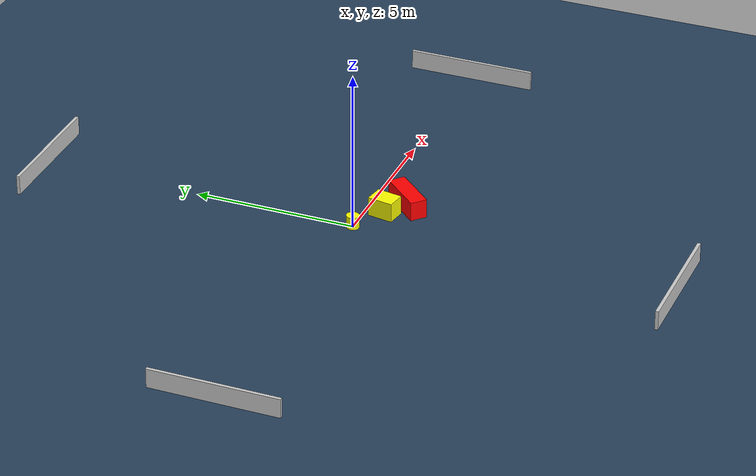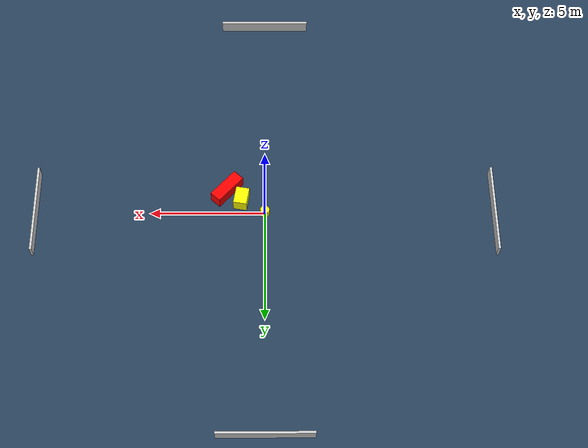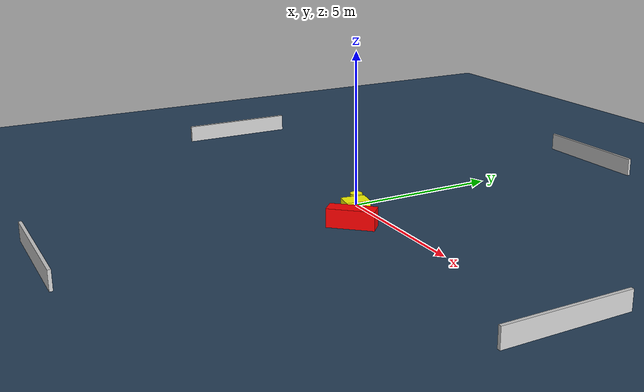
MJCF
<?xml version="1.0" ?>
<mujoco model="generated_environment">
  <option timestep="0.01" integrator="RK4" cone="elliptic"/>
  <default>
    <geom density="1"/>
  </default>
  <asset>
    <texture builtin="gradient" height="3072" name="skybox" rgb1="0.3 0.5 0.7" rgb2="0 0 0" type="skybox" width="512"/>
    <texture builtin="checker" height="300" name="groundplane" rgb1="0.2 0.3 0.4" rgb2="0.1 0.2 0.3" type="2d" width="300"/>
    <material name="groundplane" reflectance="0.2" texrepeat="5 5" texture="groundplane"/>
  </asset>
  <worldbody>
    <light dir="0 0 -1" directional="true" pos="0 0 1.5"/>
    <geom condim="3" friction="0.5 0.005 0.001" material="groundplane" name="floor" pos="0 0 0" size="0 0 0.05" type="plane"/>
    <body name="walls">
      <geom name="wall_1" condim="4" pos="-10.0 0.0 0.3" rgba="0.800000011920929 0.800000011920929 0.800000011920929 1.0" size="0.05 2.0 0.3" type="box"/>
      <geom name="wall_2" condim="4" pos="10.0 0.0 0.3" rgba="0.800000011920929 0.800000011920929 0.800000011920929 1.0" size="0.05 2.0 0.3" type="box"/>
      <geom name="wall_3" condim="4" pos="0.0 -10.0 0.3" rgba="0.800000011920929 0.800000011920929 0.800000011920929 1.0" size="2.0 0.05 0.3" type="box"/>
      <geom name="wall_4" condim="4" pos="0.0 10.0 0.3" rgba="0.800000011920929 0.800000011920929 0.800000011920929 1.0" size="2.0 0.05 0.3" type="box"/>
    </body>
    <body name="robot">
      <joint name="joint_x" type="slide" pos="0 0 0" axis="1 0 0"/>
      <joint name="joint_y" type="slide" pos="0 0 0" axis="0 1 0"/>
      <geom name="robot" type="cylinder" pos="0.0 0.0 0.2" size="0.2 0.2 0.0" mass="5.0" friction="1.0 0.005 0.0001" condim="4" rgba="1.0 1.0 0.0 1.0"/>
    </body>
    <body name="obstacle_1_movable">
      <geom name="obstacle_1_movable" condim="4" pos="1.028328155757795 -0.6033067999634784 0.3" euler="0 0 80.45890949496734" friction="0.0 0.005 0.001" rgba="1.0 1.0 0.0 1.0" size="0.3935780496381557 0.29168594072037624 0.3" type="box" mass="0.1"/>
      <joint type="free"/>
    </body>
    <body name="obstacle_2_static">
      <geom name="obstacle_2_static" condim="4" pos="1.663830756921278 -1.0797026202350097 0.3" euler="0 0 47.394252908568745" friction="0.0 0.005 0.001" rgba="1.0 0.0 0.0 1.0" size="0.7525172432258755 0.26260598121914525 0.3" type="box"/>
    </body>
  </worldbody>
  <actuator>
    <motor name="actuator_x" joint="joint_x" gear="1" ctrlrange="-1 1"/>
    <motor name="actuator_y" joint="joint_y" gear="1" ctrlrange="-1 1"/>
  </actuator>
</mujoco>
